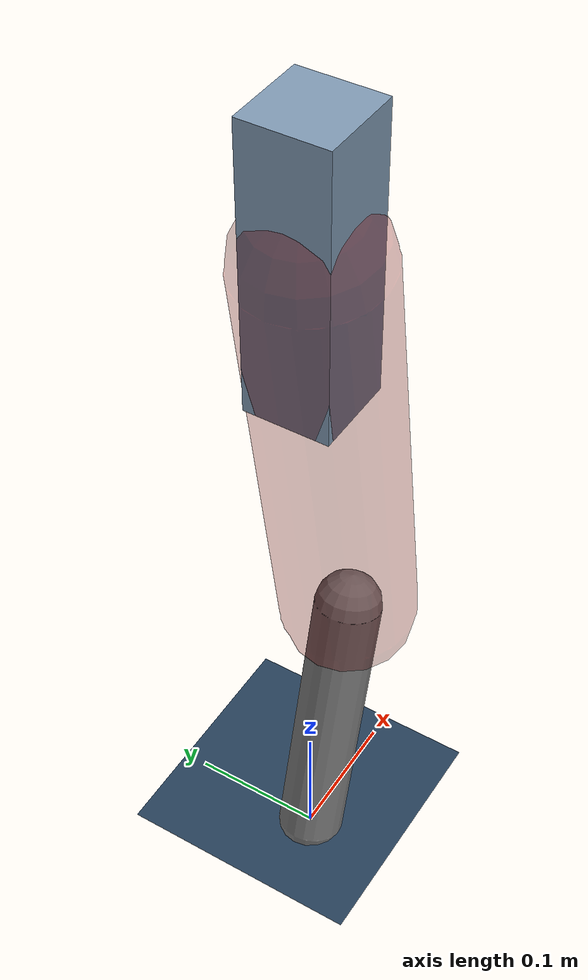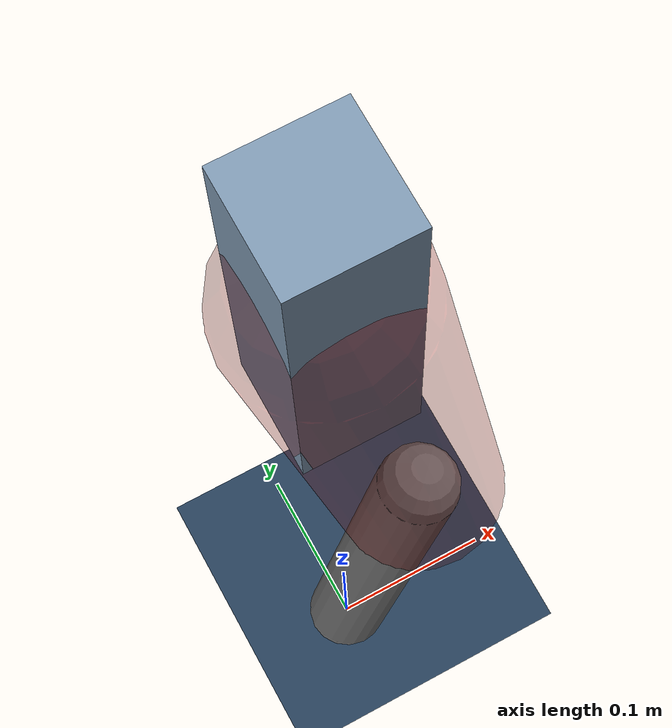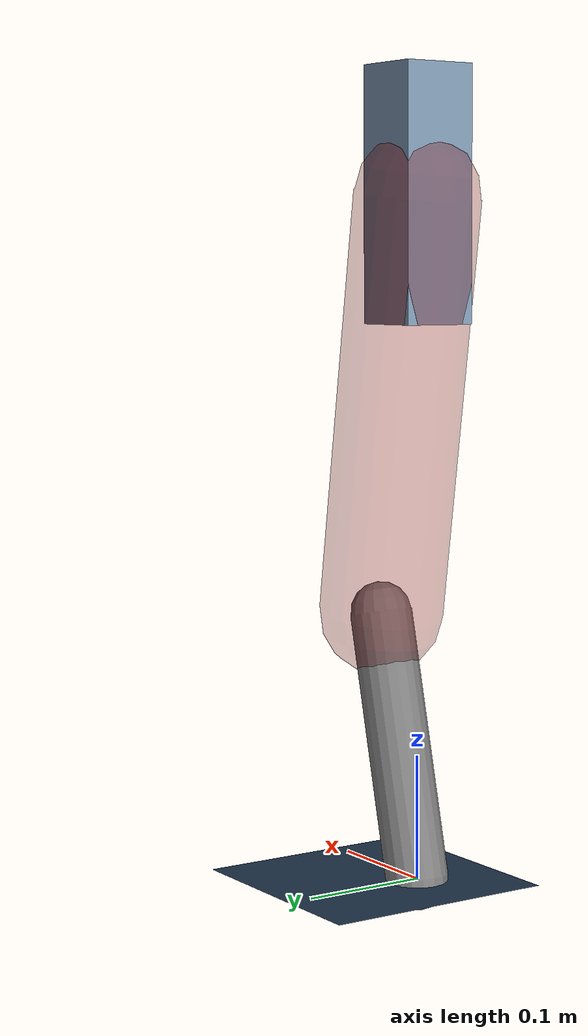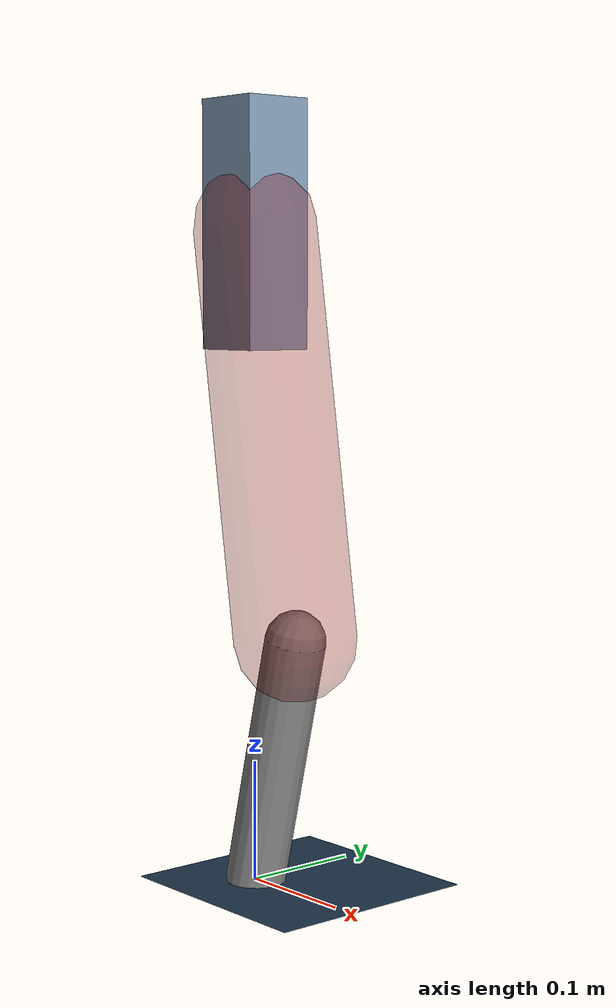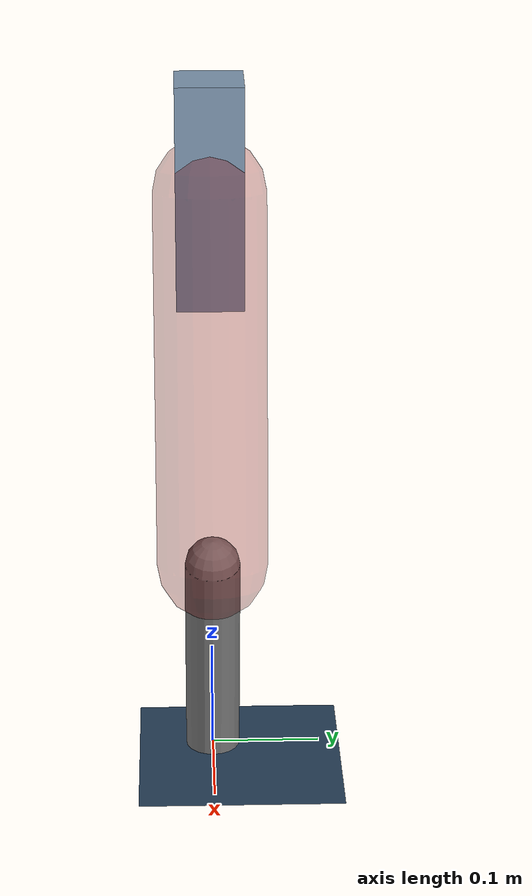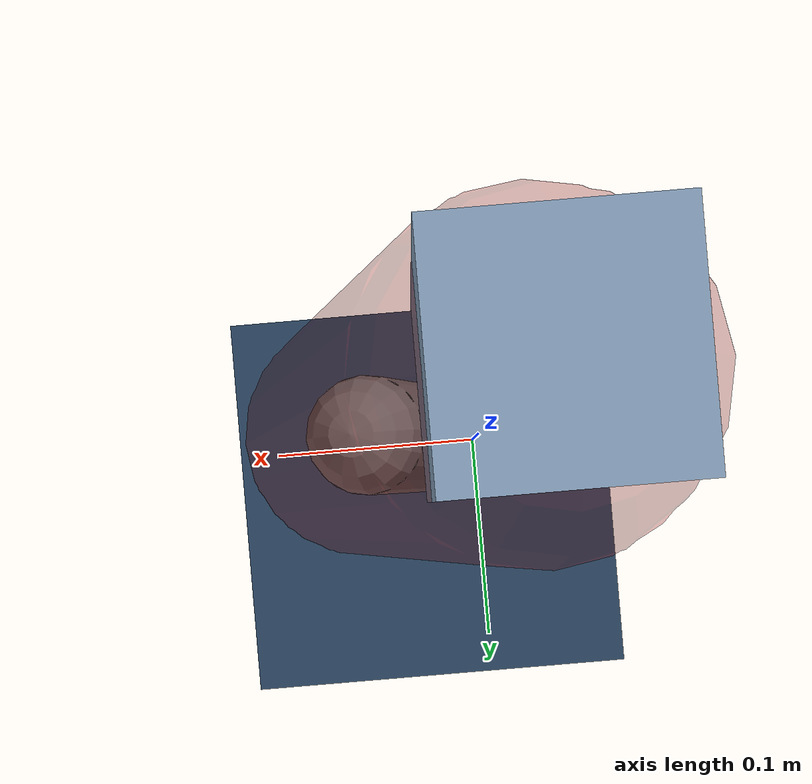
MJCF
<mujoco model="Hopper2D">
	<compiler inertiafromgeom="true" angle="radian" />
	<option timestep="0.001" integrator="implicit" cone="elliptic" solver="Newton" tolerance="1e-10" />

	<default>
		<geom contype="1" conaffinity="1" condim="3" friction="2 0.005 0.0001" solref="0.005 1" />
		<joint limited="true" damping="0.1" />
	</default>

	<asset>
		<texture name="skybox" type="skybox" builtin="gradient" rgb1=".4 .6 .8" rgb2="0 0 0" width="800" height="800" />
		<texture name="grid" type="2d" builtin="checker" rgb1=".1 .2 .3" rgb2=".2 .3 .4" width="300" height="300" mark="edge" markrgb=".2 .3 .4" />
		<material name="ground" texture="grid" texrepeat="1 1" texuniform="true" reflectance="0.1" />
		<material name="leg" rgba="0.5 0.6 0.7 1" />
	</asset>

	<worldbody>

		<geom name="floor" type="plane" size="5 5 0.25" material="ground" />

		<light directional="false" diffuse="0.8 0.8 0.8" specular="0.3 0.3 0.3" pos="0 0 2" dir="0 0 -1" />
		<light mode="targetbodycom" target="base" directional="false" diffuse="0.8 0.8 0.8" specular="0.3 0.3 0.3" pos="0 0 2" dir="0 0 -1" />

		<camera name="fixed" pos="0 -2 1" xyaxes="1 0 0 0 0 1" />
		<camera name="tracking" mode="trackcom" pos="0 -3 1" />

		<body name="root" pos="0 0 0.5421843312560604">
			<joint name="slide_x" type="slide" axis="1 0 0" range="-100 100" />
			<joint name="slide_z" type="slide" axis="0 0 1" range="0 10" />

			<body name="base" pos="0 0 0">
				<geom name="torso" type="box" size="0.03 0.03 0.1" mass="2.719" material="leg" />

				<body name="link1" pos="0 0 0" euler="0 1.4190724887992925 0">
					<joint type="hinge" axis="0 -1 0" pos="0 0 0" name="hinge1" limited="true" range="-3.14 3.14" stiffness="0" damping="0.1" />
					<geom name="thigh" type="capsule" fromto="0 0 0 0.3371725878071878 0 0" size="0.05" rgba="0.5 0 0 0.3" mass="1.0907832458601259" />

					<body name="link2" pos="0.3371725878071878 0 0" euler="0 0.39101628237607733 0">
						<joint type="hinge" axis="0 -1 0" pos="0 0 0" name="hinge2" limited="true" range="-3.14 3.14" stiffness="0" damping="0.1" />
						<geom name="shank" type="capsule" fromto="0 0 0 0.21501174344887256 0 0" size="0.025" mass="0.41350939475909804" />

					</body>
				</body>
			</body>
		</body>
	</worldbody>

	<actuator>
		<motor name="torque1" joint="hinge1" ctrlrange="-148.05594330121488 148.05594330121488" ctrllimited="true" gear="1" />
		<motor name="torque2" joint="hinge2" ctrlrange="-99.11531343564486 99.11531343564486" ctrllimited="true" gear="1" />
	</actuator>
</mujoco>
